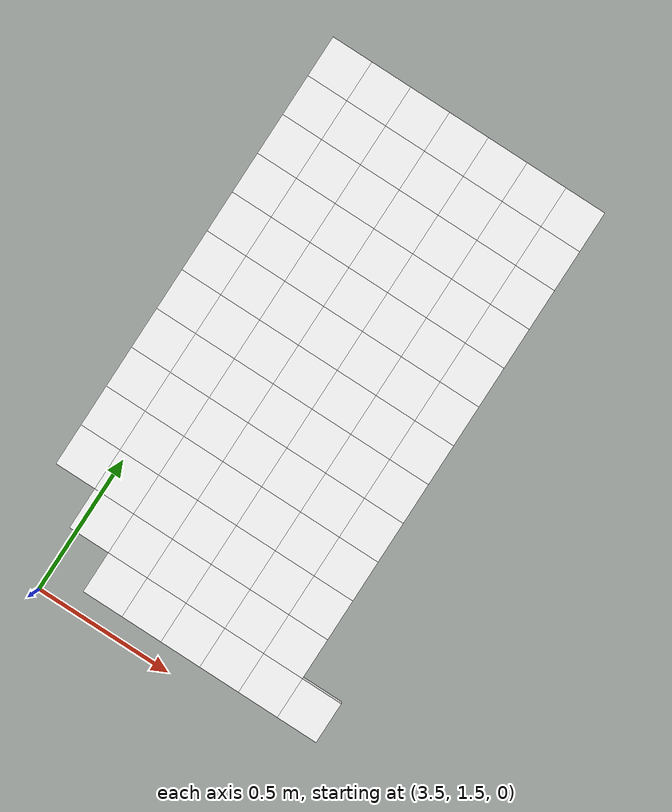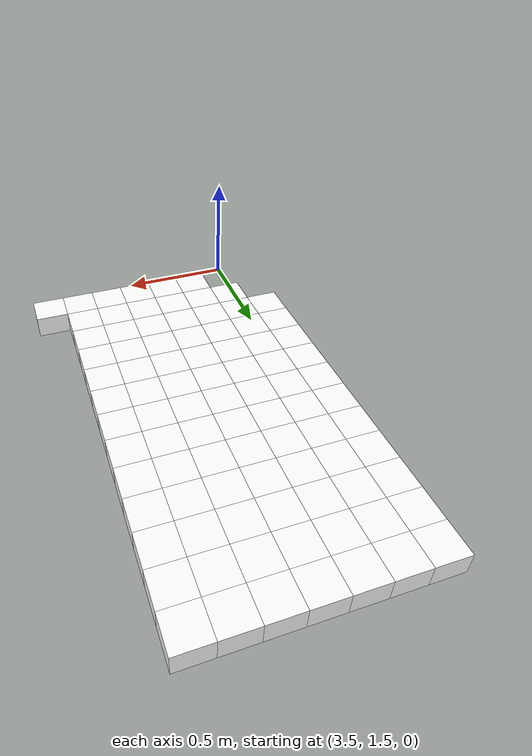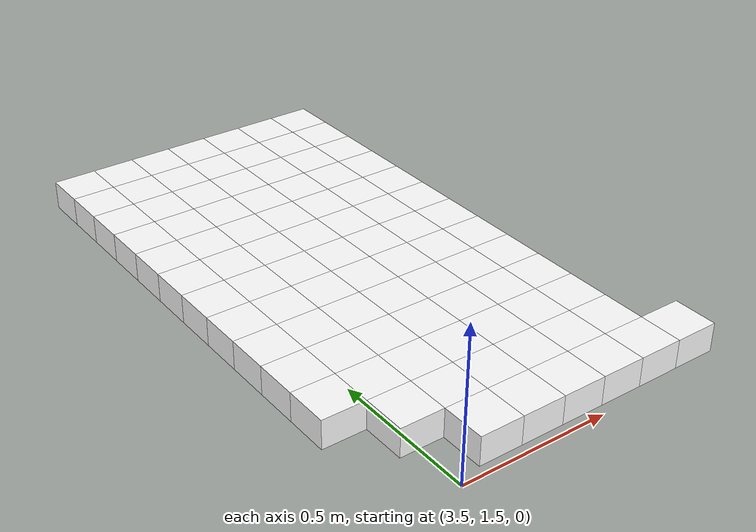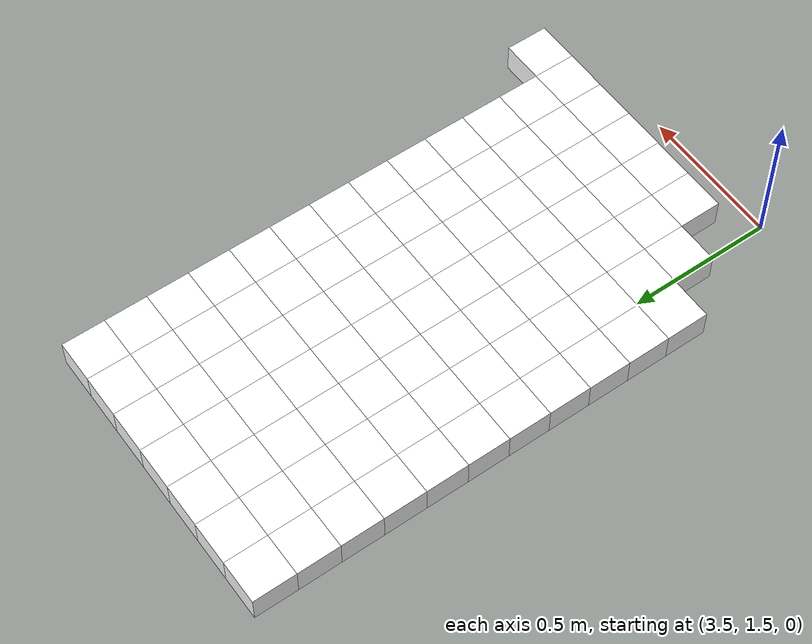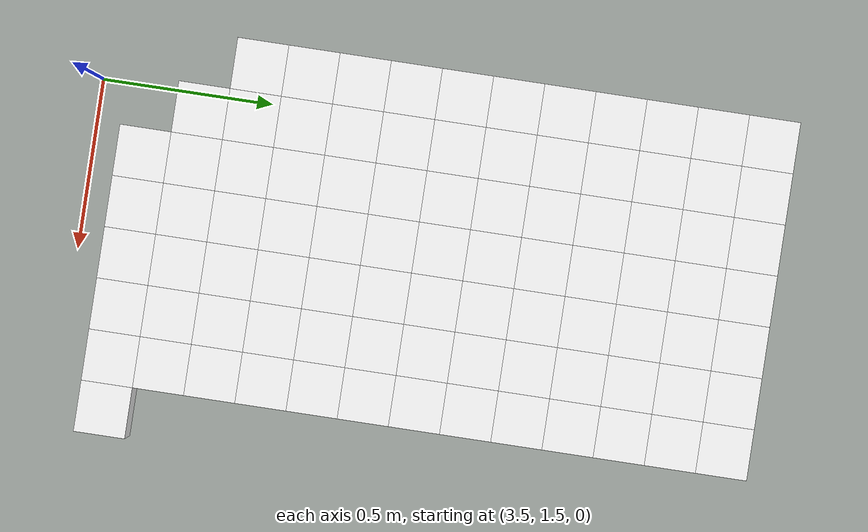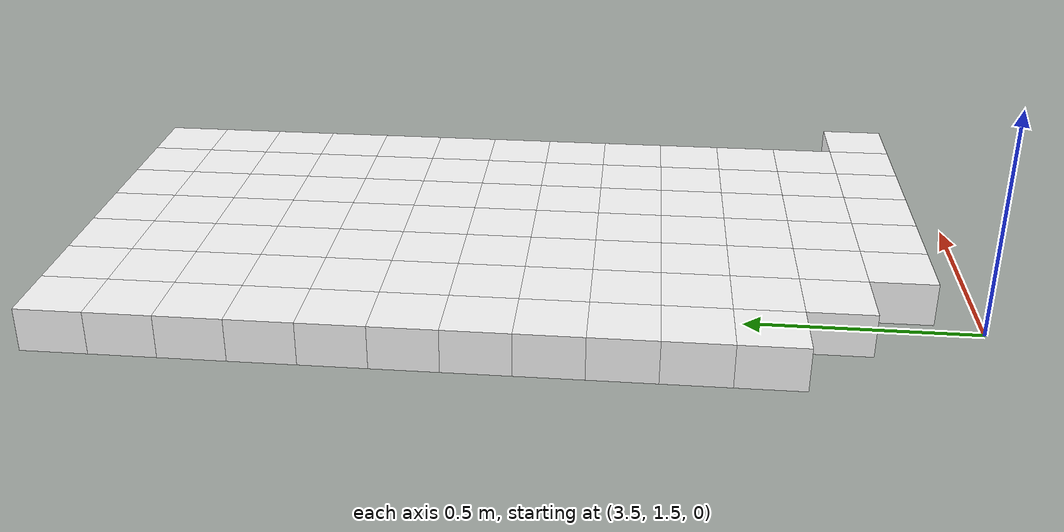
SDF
<sdf version="1.7">
 <world name="default">
  <include><uri>model://sun</uri></include>
  <model name="static_environment">
   <static>true</static>
   <link name="region_568">
    <pose>3.700000000000003 1.65 0.0 0.0 0.0 0.0</pose>
    <collision name="region_568_collision">
     <geometry><box><size>0.15 0.15 0.1</size></box></geometry>
     <surface><friction><ode><mu>1.0</mu><mu2>1.0</mu2></ode></friction></surface>
    </collision>
    <visual name="region_568_visual">
     <geometry><box><size>0.15 0.15 0.1</size></box></geometry>
     <material><ambient>1.0 1.0 1.0 1.0</ambient><diffuse>1.0 1.0 1.0 1.0</diffuse></material>
    </visual>
   </link>
   <link name="region_569">
    <pose>3.850000000000003 1.65 0.0 0.0 0.0 0.0</pose>
    <collision name="region_569_collision">
     <geometry><box><size>0.15 0.15 0.1</size></box></geometry>
     <surface><friction><ode><mu>1.0</mu><mu2>1.0</mu2></ode></friction></surface>
    </collision>
    <visual name="region_569_visual">
     <geometry><box><size>0.15 0.15 0.1</size></box></geometry>
     <material><ambient>1.0 1.0 1.0 1.0</ambient><diffuse>1.0 1.0 1.0 1.0</diffuse></material>
    </visual>
   </link>
   <link name="region_570">
    <pose>4.0000000000000036 1.65 0.0 0.0 0.0 0.0</pose>
    <collision name="region_570_collision">
     <geometry><box><size>0.15 0.15 0.1</size></box></geometry>
     <surface><friction><ode><mu>1.0</mu><mu2>1.0</mu2></ode></friction></surface>
    </collision>
    <visual name="region_570_visual">
     <geometry><box><size>0.15 0.15 0.1</size></box></geometry>
     <material><ambient>1.0 1.0 1.0 1.0</ambient><diffuse>1.0 1.0 1.0 1.0</diffuse></material>
    </visual>
   </link>
   <link name="region_571">
    <pose>4.150000000000004 1.65 0.0 0.0 0.0 0.0</pose>
    <collision name="region_571_collision">
     <geometry><box><size>0.15 0.15 0.1</size></box></geometry>
     <surface><friction><ode><mu>1.0</mu><mu2>1.0</mu2></ode></friction></surface>
    </collision>
    <visual name="region_571_visual">
     <geometry><box><size>0.15 0.15 0.1</size></box></geometry>
     <material><ambient>1.0 1.0 1.0 1.0</ambient><diffuse>1.0 1.0 1.0 1.0</diffuse></material>
    </visual>
   </link>
   <link name="region_572">
    <pose>4.300000000000004 1.65 0.0 0.0 0.0 0.0</pose>
    <collision name="region_572_collision">
     <geometry><box><size>0.15 0.15 0.1</size></box></geometry>
     <surface><friction><ode><mu>1.0</mu><mu2>1.0</mu2></ode></friction></surface>
    </collision>
    <visual name="region_572_visual">
     <geometry><box><size>0.15 0.15 0.1</size></box></geometry>
     <material><ambient>1.0 1.0 1.0 1.0</ambient><diffuse>1.0 1.0 1.0 1.0</diffuse></material>
    </visual>
   </link>
   <link name="region_573">
    <pose>4.450000000000005 1.65 0.0 0.0 0.0 0.0</pose>
    <collision name="region_573_collision">
     <geometry><box><size>0.15 0.15 0.1</size></box></geometry>
     <surface><friction><ode><mu>1.0</mu><mu2>1.0</mu2></ode></friction></surface>
    </collision>
    <visual name="region_573_visual">
     <geometry><box><size>0.15 0.15 0.1</size></box></geometry>
     <material><ambient>1.0 1.0 1.0 1.0</ambient><diffuse>1.0 1.0 1.0 1.0</diffuse></material>
    </visual>
   </link>
   <link name="region_587">
    <pose>3.5500000000000025 1.7999999999999998 0.0 0.0 0.0 0.0</pose>
    <collision name="region_587_collision">
     <geometry><box><size>0.15 0.15 0.1</size></box></geometry>
     <surface><friction><ode><mu>1.0</mu><mu2>1.0</mu2></ode></friction></surface>
    </collision>
    <visual name="region_587_visual">
     <geometry><box><size>0.15 0.15 0.1</size></box></geometry>
     <material><ambient>1.0 1.0 1.0 1.0</ambient><diffuse>1.0 1.0 1.0 1.0</diffuse></material>
    </visual>
   </link>
   <link name="region_588">
    <pose>3.700000000000003 1.7999999999999998 0.0 0.0 0.0 0.0</pose>
    <collision name="region_588_collision">
     <geometry><box><size>0.15 0.15 0.1</size></box></geometry>
     <surface><friction><ode><mu>1.0</mu><mu2>1.0</mu2></ode></friction></surface>
    </collision>
    <visual name="region_588_visual">
     <geometry><box><size>0.15 0.15 0.1</size></box></geometry>
     <material><ambient>1.0 1.0 1.0 1.0</ambient><diffuse>1.0 1.0 1.0 1.0</diffuse></material>
    </visual>
   </link>
   <link name="region_589">
    <pose>3.850000000000003 1.7999999999999998 0.0 0.0 0.0 0.0</pose>
    <collision name="region_589_collision">
     <geometry><box><size>0.15 0.15 0.1</size></box></geometry>
     <surface><friction><ode><mu>1.0</mu><mu2>1.0</mu2></ode></friction></surface>
    </collision>
    <visual name="region_589_visual">
     <geometry><box><size>0.15 0.15 0.1</size></box></geometry>
     <material><ambient>1.0 1.0 1.0 1.0</ambient><diffuse>1.0 1.0 1.0 1.0</diffuse></material>
    </visual>
   </link>
   <link name="region_590">
    <pose>4.0000000000000036 1.7999999999999998 0.0 0.0 0.0 0.0</pose>
    <collision name="region_590_collision">
     <geometry><box><size>0.15 0.15 0.1</size></box></geometry>
     <surface><friction><ode><mu>1.0</mu><mu2>1.0</mu2></ode></friction></surface>
    </collision>
    <visual name="region_590_visual">
     <geometry><box><size>0.15 0.15 0.1</size></box></geometry>
     <material><ambient>1.0 1.0 1.0 1.0</ambient><diffuse>1.0 1.0 1.0 1.0</diffuse></material>
    </visual>
   </link>
   <link name="region_591">
    <pose>4.150000000000004 1.7999999999999998 0.0 0.0 0.0 0.0</pose>
    <collision name="region_591_collision">
     <geometry><box><size>0.15 0.15 0.1</size></box></geometry>
     <surface><friction><ode><mu>1.0</mu><mu2>1.0</mu2></ode></friction></surface>
    </collision>
    <visual name="region_591_visual">
     <geometry><box><size>0.15 0.15 0.1</size></box></geometry>
     <material><ambient>1.0 1.0 1.0 1.0</ambient><diffuse>1.0 1.0 1.0 1.0</diffuse></material>
    </visual>
   </link>
   <link name="region_592">
    <pose>4.300000000000004 1.7999999999999998 0.0 0.0 0.0 0.0</pose>
    <collision name="region_592_collision">
     <geometry><box><size>0.15 0.15 0.1</size></box></geometry>
     <surface><friction><ode><mu>1.0</mu><mu2>1.0</mu2></ode></friction></surface>
    </collision>
    <visual name="region_592_visual">
     <geometry><box><size>0.15 0.15 0.1</size></box></geometry>
     <material><ambient>1.0 1.0 1.0 1.0</ambient><diffuse>1.0 1.0 1.0 1.0</diffuse></material>
    </visual>
   </link>
   <link name="region_606">
    <pose>3.400000000000002 1.9499999999999997 0.0 0.0 0.0 0.0</pose>
    <collision name="region_606_collision">
     <geometry><box><size>0.15 0.15 0.1</size></box></geometry>
     <surface><friction><ode><mu>1.0</mu><mu2>1.0</mu2></ode></friction></surface>
    </collision>
    <visual name="region_606_visual">
     <geometry><box><size>0.15 0.15 0.1</size></box></geometry>
     <material><ambient>1.0 1.0 1.0 1.0</ambient><diffuse>1.0 1.0 1.0 1.0</diffuse></material>
    </visual>
   </link>
   <link name="region_607">
    <pose>3.5500000000000025 1.9499999999999997 0.0 0.0 0.0 0.0</pose>
    <collision name="region_607_collision">
     <geometry><box><size>0.15 0.15 0.1</size></box></geometry>
     <surface><friction><ode><mu>1.0</mu><mu2>1.0</mu2></ode></friction></surface>
    </collision>
    <visual name="region_607_visual">
     <geometry><box><size>0.15 0.15 0.1</size></box></geometry>
     <material><ambient>1.0 1.0 1.0 1.0</ambient><diffuse>1.0 1.0 1.0 1.0</diffuse></material>
    </visual>
   </link>
   <link name="region_608">
    <pose>3.700000000000003 1.9499999999999997 0.0 0.0 0.0 0.0</pose>
    <collision name="region_608_collision">
     <geometry><box><size>0.15 0.15 0.1</size></box></geometry>
     <surface><friction><ode><mu>1.0</mu><mu2>1.0</mu2></ode></friction></surface>
    </collision>
    <visual name="region_608_visual">
     <geometry><box><size>0.15 0.15 0.1</size></box></geometry>
     <material><ambient>1.0 1.0 1.0 1.0</ambient><diffuse>1.0 1.0 1.0 1.0</diffuse></material>
    </visual>
   </link>
   <link name="region_609">
    <pose>3.850000000000003 1.9499999999999997 0.0 0.0 0.0 0.0</pose>
    <collision name="region_609_collision">
     <geometry><box><size>0.15 0.15 0.1</size></box></geometry>
     <surface><friction><ode><mu>1.0</mu><mu2>1.0</mu2></ode></friction></surface>
    </collision>
    <visual name="region_609_visual">
     <geometry><box><size>0.15 0.15 0.1</size></box></geometry>
     <material><ambient>1.0 1.0 1.0 1.0</ambient><diffuse>1.0 1.0 1.0 1.0</diffuse></material>
    </visual>
   </link>
   <link name="region_610">
    <pose>4.0000000000000036 1.9499999999999997 0.0 0.0 0.0 0.0</pose>
    <collision name="region_610_collision">
     <geometry><box><size>0.15 0.15 0.1</size></box></geometry>
     <surface><friction><ode><mu>1.0</mu><mu2>1.0</mu2></ode></friction></surface>
    </collision>
    <visual name="region_610_visual">
     <geometry><box><size>0.15 0.15 0.1</size></box></geometry>
     <material><ambient>1.0 1.0 1.0 1.0</ambient><diffuse>1.0 1.0 1.0 1.0</diffuse></material>
    </visual>
   </link>
   <link name="region_611">
    <pose>4.150000000000004 1.9499999999999997 0.0 0.0 0.0 0.0</pose>
    <collision name="region_611_collision">
     <geometry><box><size>0.15 0.15 0.1</size></box></geometry>
     <surface><friction><ode><mu>1.0</mu><mu2>1.0</mu2></ode></friction></surface>
    </collision>
    <visual name="region_611_visual">
     <geometry><box><size>0.15 0.15 0.1</size></box></geometry>
     <material><ambient>1.0 1.0 1.0 1.0</ambient><diffuse>1.0 1.0 1.0 1.0</diffuse></material>
    </visual>
   </link>
   <link name="region_612">
    <pose>4.300000000000004 1.9499999999999997 0.0 0.0 0.0 0.0</pose>
    <collision name="region_612_collision">
     <geometry><box><size>0.15 0.15 0.1</size></box></geometry>
     <surface><friction><ode><mu>1.0</mu><mu2>1.0</mu2></ode></friction></surface>
    </collision>
    <visual name="region_612_visual">
     <geometry><box><size>0.15 0.15 0.1</size></box></geometry>
     <material><ambient>1.0 1.0 1.0 1.0</ambient><diffuse>1.0 1.0 1.0 1.0</diffuse></material>
    </visual>
   </link>
   <link name="region_626">
    <pose>3.400000000000002 2.0999999999999996 0.0 0.0 0.0 0.0</pose>
    <collision name="region_626_collision">
     <geometry><box><size>0.15 0.15 0.1</size></box></geometry>
     <surface><friction><ode><mu>1.0</mu><mu2>1.0</mu2></ode></friction></surface>
    </collision>
    <visual name="region_626_visual">
     <geometry><box><size>0.15 0.15 0.1</size></box></geometry>
     <material><ambient>1.0 1.0 1.0 1.0</ambient><diffuse>1.0 1.0 1.0 1.0</diffuse></material>
    </visual>
   </link>
   <link name="region_627">
    <pose>3.5500000000000025 2.0999999999999996 0.0 0.0 0.0 0.0</pose>
    <collision name="region_627_collision">
     <geometry><box><size>0.15 0.15 0.1</size></box></geometry>
     <surface><friction><ode><mu>1.0</mu><mu2>1.0</mu2></ode></friction></surface>
    </collision>
    <visual name="region_627_visual">
     <geometry><box><size>0.15 0.15 0.1</size></box></geometry>
     <material><ambient>1.0 1.0 1.0 1.0</ambient><diffuse>1.0 1.0 1.0 1.0</diffuse></material>
    </visual>
   </link>
   <link name="region_628">
    <pose>3.700000000000003 2.0999999999999996 0.0 0.0 0.0 0.0</pose>
    <collision name="region_628_collision">
     <geometry><box><size>0.15 0.15 0.1</size></box></geometry>
     <surface><friction><ode><mu>1.0</mu><mu2>1.0</mu2></ode></friction></surface>
    </collision>
    <visual name="region_628_visual">
     <geometry><box><size>0.15 0.15 0.1</size></box></geometry>
     <material><ambient>1.0 1.0 1.0 1.0</ambient><diffuse>1.0 1.0 1.0 1.0</diffuse></material>
    </visual>
   </link>
   <link name="region_629">
    <pose>3.850000000000003 2.0999999999999996 0.0 0.0 0.0 0.0</pose>
    <collision name="region_629_collision">
     <geometry><box><size>0.15 0.15 0.1</size></box></geometry>
     <surface><friction><ode><mu>1.0</mu><mu2>1.0</mu2></ode></friction></surface>
    </collision>
    <visual name="region_629_visual">
     <geometry><box><size>0.15 0.15 0.1</size></box></geometry>
     <material><ambient>1.0 1.0 1.0 1.0</ambient><diffuse>1.0 1.0 1.0 1.0</diffuse></material>
    </visual>
   </link>
   <link name="region_630">
    <pose>4.0000000000000036 2.0999999999999996 0.0 0.0 0.0 0.0</pose>
    <collision name="region_630_collision">
     <geometry><box><size>0.15 0.15 0.1</size></box></geometry>
     <surface><friction><ode><mu>1.0</mu><mu2>1.0</mu2></ode></friction></surface>
    </collision>
    <visual name="region_630_visual">
     <geometry><box><size>0.15 0.15 0.1</size></box></geometry>
     <material><ambient>1.0 1.0 1.0 1.0</ambient><diffuse>1.0 1.0 1.0 1.0</diffuse></material>
    </visual>
   </link>
   <link name="region_631">
    <pose>4.150000000000004 2.0999999999999996 0.0 0.0 0.0 0.0</pose>
    <collision name="region_631_collision">
     <geometry><box><size>0.15 0.15 0.1</size></box></geometry>
     <surface><friction><ode><mu>1.0</mu><mu2>1.0</mu2></ode></friction></surface>
    </collision>
    <visual name="region_631_visual">
     <geometry><box><size>0.15 0.15 0.1</size></box></geometry>
     <material><ambient>1.0 1.0 1.0 1.0</ambient><diffuse>1.0 1.0 1.0 1.0</diffuse></material>
    </visual>
   </link>
   <link name="region_632">
    <pose>4.300000000000004 2.0999999999999996 0.0 0.0 0.0 0.0</pose>
    <collision name="region_632_collision">
     <geometry><box><size>0.15 0.15 0.1</size></box></geometry>
     <surface><friction><ode><mu>1.0</mu><mu2>1.0</mu2></ode></friction></surface>
    </collision>
    <visual name="region_632_visual">
     <geometry><box><size>0.15 0.15 0.1</size></box></geometry>
     <material><ambient>1.0 1.0 1.0 1.0</ambient><diffuse>1.0 1.0 1.0 1.0</diffuse></material>
    </visual>
   </link>
   <link name="region_646">
    <pose>3.400000000000002 2.2499999999999996 0.0 0.0 0.0 0.0</pose>
    <collision name="region_646_collision">
     <geometry><box><size>0.15 0.15 0.1</size></box></geometry>
     <surface><friction><ode><mu>1.0</mu><mu2>1.0</mu2></ode></friction></surface>
    </collision>
    <visual name="region_646_visual">
     <geometry><box><size>0.15 0.15 0.1</size></box></geometry>
     <material><ambient>1.0 1.0 1.0 1.0</ambient><diffuse>1.0 1.0 1.0 1.0</diffuse></material>
    </visual>
   </link>
   <link name="region_647">
    <pose>3.5500000000000025 2.2499999999999996 0.0 0.0 0.0 0.0</pose>
    <collision name="region_647_collision">
     <geometry><box><size>0.15 0.15 0.1</size></box></geometry>
     <surface><friction><ode><mu>1.0</mu><mu2>1.0</mu2></ode></friction></surface>
    </collision>
    <visual name="region_647_visual">
     <geometry><box><size>0.15 0.15 0.1</size></box></geometry>
     <material><ambient>1.0 1.0 1.0 1.0</ambient><diffuse>1.0 1.0 1.0 1.0</diffuse></material>
    </visual>
   </link>
   <link name="region_648">
    <pose>3.700000000000003 2.2499999999999996 0.0 0.0 0.0 0.0</pose>
    <collision name="region_648_collision">
     <geometry><box><size>0.15 0.15 0.1</size></box></geometry>
     <surface><friction><ode><mu>1.0</mu><mu2>1.0</mu2></ode></friction></surface>
    </collision>
    <visual name="region_648_visual">
     <geometry><box><size>0.15 0.15 0.1</size></box></geometry>
     <material><ambient>1.0 1.0 1.0 1.0</ambient><diffuse>1.0 1.0 1.0 1.0</diffuse></material>
    </visual>
   </link>
   <link name="region_649">
    <pose>3.850000000000003 2.2499999999999996 0.0 0.0 0.0 0.0</pose>
    <collision name="region_649_collision">
     <geometry><box><size>0.15 0.15 0.1</size></box></geometry>
     <surface><friction><ode><mu>1.0</mu><mu2>1.0</mu2></ode></friction></surface>
    </collision>
    <visual name="region_649_visual">
     <geometry><box><size>0.15 0.15 0.1</size></box></geometry>
     <material><ambient>1.0 1.0 1.0 1.0</ambient><diffuse>1.0 1.0 1.0 1.0</diffuse></material>
    </visual>
   </link>
   <link name="region_650">
    <pose>4.0000000000000036 2.2499999999999996 0.0 0.0 0.0 0.0</pose>
    <collision name="region_650_collision">
     <geometry><box><size>0.15 0.15 0.1</size></box></geometry>
     <surface><friction><ode><mu>1.0</mu><mu2>1.0</mu2></ode></friction></surface>
    </collision>
    <visual name="region_650_visual">
     <geometry><box><size>0.15 0.15 0.1</size></box></geometry>
     <material><ambient>1.0 1.0 1.0 1.0</ambient><diffuse>1.0 1.0 1.0 1.0</diffuse></material>
    </visual>
   </link>
   <link name="region_651">
    <pose>4.150000000000004 2.2499999999999996 0.0 0.0 0.0 0.0</pose>
    <collision name="region_651_collision">
     <geometry><box><size>0.15 0.15 0.1</size></box></geometry>
     <surface><friction><ode><mu>1.0</mu><mu2>1.0</mu2></ode></friction></surface>
    </collision>
    <visual name="region_651_visual">
     <geometry><box><size>0.15 0.15 0.1</size></box></geometry>
     <material><ambient>1.0 1.0 1.0 1.0</ambient><diffuse>1.0 1.0 1.0 1.0</diffuse></material>
    </visual>
   </link>
   <link name="region_652">
    <pose>4.300000000000004 2.2499999999999996 0.0 0.0 0.0 0.0</pose>
    <collision name="region_652_collision">
     <geometry><box><size>0.15 0.15 0.1</size></box></geometry>
     <surface><friction><ode><mu>1.0</mu><mu2>1.0</mu2></ode></friction></surface>
    </collision>
    <visual name="region_652_visual">
     <geometry><box><size>0.15 0.15 0.1</size></box></geometry>
     <material><ambient>1.0 1.0 1.0 1.0</ambient><diffuse>1.0 1.0 1.0 1.0</diffuse></material>
    </visual>
   </link>
   <link name="region_666">
    <pose>3.400000000000002 2.3999999999999995 0.0 0.0 0.0 0.0</pose>
    <collision name="region_666_collision">
     <geometry><box><size>0.15 0.15 0.1</size></box></geometry>
     <surface><friction><ode><mu>1.0</mu><mu2>1.0</mu2></ode></friction></surface>
    </collision>
    <visual name="region_666_visual">
     <geometry><box><size>0.15 0.15 0.1</size></box></geometry>
     <material><ambient>1.0 1.0 1.0 1.0</ambient><diffuse>1.0 1.0 1.0 1.0</diffuse></material>
    </visual>
   </link>
   <link name="region_667">
    <pose>3.5500000000000025 2.3999999999999995 0.0 0.0 0.0 0.0</pose>
    <collision name="region_667_collision">
     <geometry><box><size>0.15 0.15 0.1</size></box></geometry>
     <surface><friction><ode><mu>1.0</mu><mu2>1.0</mu2></ode></friction></surface>
    </collision>
    <visual name="region_667_visual">
     <geometry><box><size>0.15 0.15 0.1</size></box></geometry>
     <material><ambient>1.0 1.0 1.0 1.0</ambient><diffuse>1.0 1.0 1.0 1.0</diffuse></material>
    </visual>
   </link>
   <link name="region_668">
    <pose>3.700000000000003 2.3999999999999995 0.0 0.0 0.0 0.0</pose>
    <collision name="region_668_collision">
     <geometry><box><size>0.15 0.15 0.1</size></box></geometry>
     <surface><friction><ode><mu>1.0</mu><mu2>1.0</mu2></ode></friction></surface>
    </collision>
    <visual name="region_668_visual">
     <geometry><box><size>0.15 0.15 0.1</size></box></geometry>
     <material><ambient>1.0 1.0 1.0 1.0</ambient><diffuse>1.0 1.0 1.0 1.0</diffuse></material>
    </visual>
   </link>
   <link name="region_669">
    <pose>3.850000000000003 2.3999999999999995 0.0 0.0 0.0 0.0</pose>
    <collision name="region_669_collision">
     <geometry><box><size>0.15 0.15 0.1</size></box></geometry>
     <surface><friction><ode><mu>1.0</mu><mu2>1.0</mu2></ode></friction></surface>
    </collision>
    <visual name="region_669_visual">
     <geometry><box><size>0.15 0.15 0.1</size></box></geometry>
     <material><ambient>1.0 1.0 1.0 1.0</ambient><diffuse>1.0 1.0 1.0 1.0</diffuse></material>
    </visual>
   </link>
   <link name="region_670">
    <pose>4.0000000000000036 2.3999999999999995 0.0 0.0 0.0 0.0</pose>
    <collision name="region_670_collision">
     <geometry><box><size>0.15 0.15 0.1</size></box></geometry>
     <surface><friction><ode><mu>1.0</mu><mu2>1.0</mu2></ode></friction></surface>
    </collision>
    <visual name="region_670_visual">
     <geometry><box><size>0.15 0.15 0.1</size></box></geometry>
     <material><ambient>1.0 1.0 1.0 1.0</ambient><diffuse>1.0 1.0 1.0 1.0</diffuse></material>
    </visual>
   </link>
   <link name="region_671">
    <pose>4.150000000000004 2.3999999999999995 0.0 0.0 0.0 0.0</pose>
    <collision name="region_671_collision">
     <geometry><box><size>0.15 0.15 0.1</size></box></geometry>
     <surface><friction><ode><mu>1.0</mu><mu2>1.0</mu2></ode></friction></surface>
    </collision>
    <visual name="region_671_visual">
     <geometry><box><size>0.15 0.15 0.1</size></box></geometry>
     <material><ambient>1.0 1.0 1.0 1.0</ambient><diffuse>1.0 1.0 1.0 1.0</diffuse></material>
    </visual>
   </link>
   <link name="region_672">
    <pose>4.300000000000004 2.3999999999999995 0.0 0.0 0.0 0.0</pose>
    <collision name="region_672_collision">
     <geometry><box><size>0.15 0.15 0.1</size></box></geometry>
     <surface><friction><ode><mu>1.0</mu><mu2>1.0</mu2></ode></friction></surface>
    </collision>
    <visual name="region_672_visual">
     <geometry><box><size>0.15 0.15 0.1</size></box></geometry>
     <material><ambient>1.0 1.0 1.0 1.0</ambient><diffuse>1.0 1.0 1.0 1.0</diffuse></material>
    </visual>
   </link>
   <link name="region_686">
    <pose>3.400000000000002 2.5499999999999994 0.0 0.0 0.0 0.0</pose>
    <collision name="region_686_collision">
     <geometry><box><size>0.15 0.15 0.1</size></box></geometry>
     <surface><friction><ode><mu>1.0</mu><mu2>1.0</mu2></ode></friction></surface>
    </collision>
    <visual name="region_686_visual">
     <geometry><box><size>0.15 0.15 0.1</size></box></geometry>
     <material><ambient>1.0 1.0 1.0 1.0</ambient><diffuse>1.0 1.0 1.0 1.0</diffuse></material>
    </visual>
   </link>
   <link name="region_687">
    <pose>3.5500000000000025 2.5499999999999994 0.0 0.0 0.0 0.0</pose>
    <collision name="region_687_collision">
     <geometry><box><size>0.15 0.15 0.1</size></box></geometry>
     <surface><friction><ode><mu>1.0</mu><mu2>1.0</mu2></ode></friction></surface>
    </collision>
    <visual name="region_687_visual">
     <geometry><box><size>0.15 0.15 0.1</size></box></geometry>
     <material><ambient>1.0 1.0 1.0 1.0</ambient><diffuse>1.0 1.0 1.0 1.0</diffuse></material>
    </visual>
   </link>
   <link name="region_688">
    <pose>3.700000000000003 2.5499999999999994 0.0 0.0 0.0 0.0</pose>
    <collision name="region_688_collision">
     <geometry><box><size>0.15 0.15 0.1</size></box></geometry>
     <surface><friction><ode><mu>1.0</mu><mu2>1.0</mu2></ode></friction></surface>
    </collision>
    <visual name="region_688_visual">
     <geometry><box><size>0.15 0.15 0.1</size></box></geometry>
     <material><ambient>1.0 1.0 1.0 1.0</ambient><diffuse>1.0 1.0 1.0 1.0</diffuse></material>
    </visual>
   </link>
   <link name="region_689">
    <pose>3.850000000000003 2.5499999999999994 0.0 0.0 0.0 0.0</pose>
    <collision name="region_689_collision">
     <geometry><box><size>0.15 0.15 0.1</size></box></geometry>
     <surface><friction><ode><mu>1.0</mu><mu2>1.0</mu2></ode></friction></surface>
    </collision>
    <visual name="region_689_visual">
     <geometry><box><size>0.15 0.15 0.1</size></box></geometry>
     <material><ambient>1.0 1.0 1.0 1.0</ambient><diffuse>1.0 1.0 1.0 1.0</diffuse></material>
    </visual>
   </link>
   <link name="region_690">
    <pose>4.0000000000000036 2.5499999999999994 0.0 0.0 0.0 0.0</pose>
    <collision name="region_690_collision">
     <geometry><box><size>0.15 0.15 0.1</size></box></geometry>
     <surface><friction><ode><mu>1.0</mu><mu2>1.0</mu2></ode></friction></surface>
    </collision>
    <visual name="region_690_visual">
     <geometry><box><size>0.15 0.15 0.1</size></box></geometry>
     <material><ambient>1.0 1.0 1.0 1.0</ambient><diffuse>1.0 1.0 1.0 1.0</diffuse></material>
    </visual>
   </link>
   <link name="region_691">
    <pose>4.150000000000004 2.5499999999999994 0.0 0.0 0.0 0.0</pose>
    <collision name="region_691_collision">
     <geometry><box><size>0.15 0.15 0.1</size></box></geometry>
     <surface><friction><ode><mu>1.0</mu><mu2>1.0</mu2></ode></friction></surface>
    </collision>
    <visual name="region_691_visual">
     <geometry><box><size>0.15 0.15 0.1</size></box></geometry>
     <material><ambient>1.0 1.0 1.0 1.0</ambient><diffuse>1.0 1.0 1.0 1.0</diffuse></material>
    </visual>
   </link>
   <link name="region_692">
    <pose>4.300000000000004 2.5499999999999994 0.0 0.0 0.0 0.0</pose>
    <collision name="region_692_collision">
     <geometry><box><size>0.15 0.15 0.1</size></box></geometry>
     <surface><friction><ode><mu>1.0</mu><mu2>1.0</mu2></ode></friction></surface>
    </collision>
    <visual name="region_692_visual">
     <geometry><box><size>0.15 0.15 0.1</size></box></geometry>
     <material><ambient>1.0 1.0 1.0 1.0</ambient><diffuse>1.0 1.0 1.0 1.0</diffuse></material>
    </visual>
   </link>
   <link name="region_706">
    <pose>3.400000000000002 2.6999999999999997 0.0 0.0 0.0 0.0</pose>
    <collision name="region_706_collision">
     <geometry><box><size>0.15 0.15 0.1</size></box></geometry>
     <surface><friction><ode><mu>1.0</mu><mu2>1.0</mu2></ode></friction></surface>
    </collision>
    <visual name="region_706_visual">
     <geometry><box><size>0.15 0.15 0.1</size></box></geometry>
     <material><ambient>1.0 1.0 1.0 1.0</ambient><diffuse>1.0 1.0 1.0 1.0</diffuse></material>
    </visual>
   </link>
   <link name="region_707">
    <pose>3.5500000000000025 2.6999999999999997 0.0 0.0 0.0 0.0</pose>
    <collision name="region_707_collision">
     <geometry><box><size>0.15 0.15 0.1</size></box></geometry>
     <surface><friction><ode><mu>1.0</mu><mu2>1.0</mu2></ode></friction></surface>
    </collision>
    <visual name="region_707_visual">
     <geometry><box><size>0.15 0.15 0.1</size></box></geometry>
     <material><ambient>1.0 1.0 1.0 1.0</ambient><diffuse>1.0 1.0 1.0 1.0</diffuse></material>
    </visual>
   </link>
   <link name="region_708">
    <pose>3.700000000000003 2.6999999999999997 0.0 0.0 0.0 0.0</pose>
    <collision name="region_708_collision">
     <geometry><box><size>0.15 0.15 0.1</size></box></geometry>
     <surface><friction><ode><mu>1.0</mu><mu2>1.0</mu2></ode></friction></surface>
    </collision>
    <visual name="region_708_visual">
     <geometry><box><size>0.15 0.15 0.1</size></box></geometry>
     <material><ambient>1.0 1.0 1.0 1.0</ambient><diffuse>1.0 1.0 1.0 1.0</diffuse></material>
    </visual>
   </link>
   <link name="region_709">
    <pose>3.850000000000003 2.6999999999999997 0.0 0.0 0.0 0.0</pose>
    <collision name="region_709_collision">
     <geometry><box><size>0.15 0.15 0.1</size></box></geometry>
     <surface><friction><ode><mu>1.0</mu><mu2>1.0</mu2></ode></friction></surface>
    </collision>
    <visual name="region_709_visual">
     <geometry><box><size>0.15 0.15 0.1</size></box></geometry>
     <material><ambient>1.0 1.0 1.0 1.0</ambient><diffuse>1.0 1.0 1.0 1.0</diffuse></material>
    </visual>
   </link>
   <link name="region_710">
    <pose>4.0000000000000036 2.6999999999999997 0.0 0.0 0.0 0.0</pose>
    <collision name="region_710_collision">
     <geometry><box><size>0.15 0.15 0.1</size></box></geometry>
     <surface><friction><ode><mu>1.0</mu><mu2>1.0</mu2></ode></friction></surface>
    </collision>
    <visual name="region_710_visual">
     <geometry><box><size>0.15 0.15 0.1</size></box></geometry>
     <material><ambient>1.0 1.0 1.0 1.0</ambient><diffuse>1.0 1.0 1.0 1.0</diffuse></material>
    </visual>
   </link>
   <link name="region_711">
    <pose>4.150000000000004 2.6999999999999997 0.0 0.0 0.0 0.0</pose>
    <collision name="region_711_collision">
     <geometry><box><size>0.15 0.15 0.1</size></box></geometry>
     <surface><friction><ode><mu>1.0</mu><mu2>1.0</mu2></ode></friction></surface>
    </collision>
    <visual name="region_711_visual">
     <geometry><box><size>0.15 0.15 0.1</size></box></geometry>
     <material><ambient>1.0 1.0 1.0 1.0</ambient><diffuse>1.0 1.0 1.0 1.0</diffuse></material>
    </visual>
   </link>
   <link name="region_712">
    <pose>4.300000000000004 2.6999999999999997 0.0 0.0 0.0 0.0</pose>
    <collision name="region_712_collision">
     <geometry><box><size>0.15 0.15 0.1</size></box></geometry>
     <surface><friction><ode><mu>1.0</mu><mu2>1.0</mu2></ode></friction></surface>
    </collision>
    <visual name="region_712_visual">
     <geometry><box><size>0.15 0.15 0.1</size></box></geometry>
     <material><ambient>1.0 1.0 1.0 1.0</ambient><diffuse>1.0 1.0 1.0 1.0</diffuse></material>
    </visual>
   </link>
   <link name="region_726">
    <pose>3.400000000000002 2.8499999999999996 0.0 0.0 0.0 0.0</pose>
    <collision name="region_726_collision">
     <geometry><box><size>0.15 0.15 0.1</size></box></geometry>
     <surface><friction><ode><mu>1.0</mu><mu2>1.0</mu2></ode></friction></surface>
    </collision>
    <visual name="region_726_visual">
     <geometry><box><size>0.15 0.15 0.1</size></box></geometry>
     <material><ambient>1.0 1.0 1.0 1.0</ambient><diffuse>1.0 1.0 1.0 1.0</diffuse></material>
    </visual>
   </link>
   <link name="region_727">
    <pose>3.5500000000000025 2.8499999999999996 0.0 0.0 0.0 0.0</pose>
    <collision name="region_727_collision">
     <geometry><box><size>0.15 0.15 0.1</size></box></geometry>
     <surface><friction><ode><mu>1.0</mu><mu2>1.0</mu2></ode></friction></surface>
    </collision>
    <visual name="region_727_visual">
     <geometry><box><size>0.15 0.15 0.1</size></box></geometry>
     <material><ambient>1.0 1.0 1.0 1.0</ambient><diffuse>1.0 1.0 1.0 1.0</diffuse></material>
    </visual>
   </link>
   <link name="region_728">
    <pose>3.700000000000003 2.8499999999999996 0.0 0.0 0.0 0.0</pose>
    <collision name="region_728_collision">
     <geometry><box><size>0.15 0.15 0.1</size></box></geometry>
     <surface><friction><ode><mu>1.0</mu><mu2>1.0</mu2></ode></friction></surface>
    </collision>
    <visual name="region_728_visual">
     <geometry><box><size>0.15 0.15 0.1</size></box></geometry>
     <material><ambient>1.0 1.0 1.0 1.0</ambient><diffuse>1.0 1.0 1.0 1.0</diffuse></material>
    </visual>
   </link>
   <link name="region_729">
    <pose>3.850000000000003 2.8499999999999996 0.0 0.0 0.0 0.0</pose>
    <collision name="region_729_collision">
     <geometry><box><size>0.15 0.15 0.1</size></box></geometry>
     <surface><friction><ode><mu>1.0</mu><mu2>1.0</mu2></ode></friction></surface>
    </collision>
    <visual name="region_729_visual">
     <geometry><box><size>0.15 0.15 0.1</size></box></geometry>
     <material><ambient>1.0 1.0 1.0 1.0</ambient><diffuse>1.0 1.0 1.0 1.0</diffuse></material>
    </visual>
   </link>
   <link name="region_730">
    <pose>4.0000000000000036 2.8499999999999996 0.0 0.0 0.0 0.0</pose>
    <collision name="region_730_collision">
     <geometry><box><size>0.15 0.15 0.1</size></box></geometry>
     <surface><friction><ode><mu>1.0</mu><mu2>1.0</mu2></ode></friction></surface>
    </collision>
    <visual name="region_730_visual">
     <geometry><box><size>0.15 0.15 0.1</size></box></geometry>
     <material><ambient>1.0 1.0 1.0 1.0</ambient><diffuse>1.0 1.0 1.0 1.0</diffuse></material>
    </visual>
   </link>
   <link name="region_731">
    <pose>4.150000000000004 2.8499999999999996 0.0 0.0 0.0 0.0</pose>
    <collision name="region_731_collision">
     <geometry><box><size>0.15 0.15 0.1</size></box></geometry>
     <surface><friction><ode><mu>1.0</mu><mu2>1.0</mu2></ode></friction></surface>
    </collision>
    <visual name="region_731_visual">
     <geometry><box><size>0.15 0.15 0.1</size></box></geometry>
     <material><ambient>1.0 1.0 1.0 1.0</ambient><diffuse>1.0 1.0 1.0 1.0</diffuse></material>
    </visual>
   </link>
   <link name="region_732">
    <pose>4.300000000000004 2.8499999999999996 0.0 0.0 0.0 0.0</pose>
    <collision name="region_732_collision">
     <geometry><box><size>0.15 0.15 0.1</size></box></geometry>
     <surface><friction><ode><mu>1.0</mu><mu2>1.0</mu2></ode></friction></surface>
    </collision>
    <visual name="region_732_visual">
     <geometry><box><size>0.15 0.15 0.1</size></box></geometry>
     <material><ambient>1.0 1.0 1.0 1.0</ambient><diffuse>1.0 1.0 1.0 1.0</diffuse></material>
    </visual>
   </link>
   <link name="region_746">
    <pose>3.400000000000002 2.9999999999999996 0.0 0.0 0.0 0.0</pose>
    <collision name="region_746_collision">
     <geometry><box><size>0.15 0.15 0.1</size></box></geometry>
     <surface><friction><ode><mu>1.0</mu><mu2>1.0</mu2></ode></friction></surface>
    </collision>
    <visual name="region_746_visual">
     <geometry><box><size>0.15 0.15 0.1</size></box></geometry>
     <material><ambient>1.0 1.0 1.0 1.0</ambient><diffuse>1.0 1.0 1.0 1.0</diffuse></material>
    </visual>
   </link>
   <link name="region_747">
    <pose>3.5500000000000025 2.9999999999999996 0.0 0.0 0.0 0.0</pose>
    <collision name="region_747_collision">
     <geometry><box><size>0.15 0.15 0.1</size></box></geometry>
     <surface><friction><ode><mu>1.0</mu><mu2>1.0</mu2></ode></friction></surface>
    </collision>
    <visual name="region_747_visual">
     <geometry><box><size>0.15 0.15 0.1</size></box></geometry>
     <material><ambient>1.0 1.0 1.0 1.0</ambient><diffuse>1.0 1.0 1.0 1.0</diffuse></material>
    </visual>
   </link>
   <link name="region_748">
    <pose>3.700000000000003 2.9999999999999996 0.0 0.0 0.0 0.0</pose>
    <collision name="region_748_collision">
     <geometry><box><size>0.15 0.15 0.1</size></box></geometry>
     <surface><friction><ode><mu>1.0</mu><mu2>1.0</mu2></ode></friction></surface>
    </collision>
    <visual name="region_748_visual">
     <geometry><box><size>0.15 0.15 0.1</size></box></geometry>
     <material><ambient>1.0 1.0 1.0 1.0</ambient><diffuse>1.0 1.0 1.0 1.0</diffuse></material>
    </visual>
   </link>
   <link name="region_749">
    <pose>3.850000000000003 2.9999999999999996 0.0 0.0 0.0 0.0</pose>
    <collision name="region_749_collision">
     <geometry><box><size>0.15 0.15 0.1</size></box></geometry>
     <surface><friction><ode><mu>1.0</mu><mu2>1.0</mu2></ode></friction></surface>
    </collision>
    <visual name="region_749_visual">
     <geometry><box><size>0.15 0.15 0.1</size></box></geometry>
     <material><ambient>1.0 1.0 1.0 1.0</ambient><diffuse>1.0 1.0 1.0 1.0</diffuse></material>
    </visual>
   </link>
   <link name="region_750">
    <pose>4.0000000000000036 2.9999999999999996 0.0 0.0 0.0 0.0</pose>
    <collision name="region_750_collision">
     <geometry><box><size>0.15 0.15 0.1</size></box></geometry>
     <surface><friction><ode><mu>1.0</mu><mu2>1.0</mu2></ode></friction></surface>
    </collision>
    <visual name="region_750_visual">
     <geometry><box><size>0.15 0.15 0.1</size></box></geometry>
     <material><ambient>1.0 1.0 1.0 1.0</ambient><diffuse>1.0 1.0 1.0 1.0</diffuse></material>
    </visual>
   </link>
   <link name="region_751">
    <pose>4.150000000000004 2.9999999999999996 0.0 0.0 0.0 0.0</pose>
    <collision name="region_751_collision">
     <geometry><box><size>0.15 0.15 0.1</size></box></geometry>
     <surface><friction><ode><mu>1.0</mu><mu2>1.0</mu2></ode></friction></surface>
    </collision>
    <visual name="region_751_visual">
     <geometry><box><size>0.15 0.15 0.1</size></box></geometry>
     <material><ambient>1.0 1.0 1.0 1.0</ambient><diffuse>1.0 1.0 1.0 1.0</diffuse></material>
    </visual>
   </link>
   <link name="region_752">
    <pose>4.300000000000004 2.9999999999999996 0.0 0.0 0.0 0.0</pose>
    <collision name="region_752_collision">
     <geometry><box><size>0.15 0.15 0.1</size></box></geometry>
     <surface><friction><ode><mu>1.0</mu><mu2>1.0</mu2></ode></friction></surface>
    </collision>
    <visual name="region_752_visual">
     <geometry><box><size>0.15 0.15 0.1</size></box></geometry>
     <material><ambient>1.0 1.0 1.0 1.0</ambient><diffuse>1.0 1.0 1.0 1.0</diffuse></material>
    </visual>
   </link>
   <link name="region_766">
    <pose>3.400000000000002 3.1499999999999995 0.0 0.0 0.0 0.0</pose>
    <collision name="region_766_collision">
     <geometry><box><size>0.15 0.15 0.1</size></box></geometry>
     <surface><friction><ode><mu>1.0</mu><mu2>1.0</mu2></ode></friction></surface>
    </collision>
    <visual name="region_766_visual">
     <geometry><box><size>0.15 0.15 0.1</size></box></geometry>
     <material><ambient>1.0 1.0 1.0 1.0</ambient><diffuse>1.0 1.0 1.0 1.0</diffuse></material>
    </visual>
   </link>
   <link name="region_767">
    <pose>3.5500000000000025 3.1499999999999995 0.0 0.0 0.0 0.0</pose>
    <collision name="region_767_collision">
     <geometry><box><size>0.15 0.15 0.1</size></box></geometry>
     <surface><friction><ode><mu>1.0</mu><mu2>1.0</mu2></ode></friction></surface>
    </collision>
    <visual name="region_767_visual">
     <geometry><box><size>0.15 0.15 0.1</size></box></geometry>
     <material><ambient>1.0 1.0 1.0 1.0</ambient><diffuse>1.0 1.0 1.0 1.0</diffuse></material>
    </visual>
   </link>
   <link name="region_768">
    <pose>3.700000000000003 3.1499999999999995 0.0 0.0 0.0 0.0</pose>
    <collision name="region_768_collision">
     <geometry><box><size>0.15 0.15 0.1</size></box></geometry>
     <surface><friction><ode><mu>1.0</mu><mu2>1.0</mu2></ode></friction></surface>
    </collision>
    <visual name="region_768_visual">
     <geometry><box><size>0.15 0.15 0.1</size></box></geometry>
     <material><ambient>1.0 1.0 1.0 1.0</ambient><diffuse>1.0 1.0 1.0 1.0</diffuse></material>
    </visual>
   </link>
   <link name="region_769">
    <pose>3.850000000000003 3.1499999999999995 0.0 0.0 0.0 0.0</pose>
    <collision name="region_769_collision">
     <geometry><box><size>0.15 0.15 0.1</size></box></geometry>
     <surface><friction><ode><mu>1.0</mu><mu2>1.0</mu2></ode></friction></surface>
    </collision>
    <visual name="region_769_visual">
     <geometry><box><size>0.15 0.15 0.1</size></box></geometry>
     <material><ambient>1.0 1.0 1.0 1.0</ambient><diffuse>1.0 1.0 1.0 1.0</diffuse></material>
    </visual>
   </link>
   <link name="region_770">
    <pose>4.0000000000000036 3.1499999999999995 0.0 0.0 0.0 0.0</pose>
    <collision name="region_770_collision">
     <geometry><box><size>0.15 0.15 0.1</size></box></geometry>
     <surface><friction><ode><mu>1.0</mu><mu2>1.0</mu2></ode></friction></surface>
    </collision>
    <visual name="region_770_visual">
     <geometry><box><size>0.15 0.15 0.1</size></box></geometry>
     <material><ambient>1.0 1.0 1.0 1.0</ambient><diffuse>1.0 1.0 1.0 1.0</diffuse></material>
    </visual>
   </link>
   <link name="region_771">
    <pose>4.150000000000004 3.1499999999999995 0.0 0.0 0.0 0.0</pose>
    <collision name="region_771_collision">
     <geometry><box><size>0.15 0.15 0.1</size></box></geometry>
     <surface><friction><ode><mu>1.0</mu><mu2>1.0</mu2></ode></friction></surface>
    </collision>
    <visual name="region_771_visual">
     <geometry><box><size>0.15 0.15 0.1</size></box></geometry>
     <material><ambient>1.0 1.0 1.0 1.0</ambient><diffuse>1.0 1.0 1.0 1.0</diffuse></material>
    </visual>
   </link>
   <link name="region_772">
    <pose>4.300000000000004 3.1499999999999995 0.0 0.0 0.0 0.0</pose>
    <collision name="region_772_collision">
     <geometry><box><size>0.15 0.15 0.1</size></box></geometry>
     <surface><friction><ode><mu>1.0</mu><mu2>1.0</mu2></ode></friction></surface>
    </collision>
    <visual name="region_772_visual">
     <geometry><box><size>0.15 0.15 0.1</size></box></geometry>
     <material><ambient>1.0 1.0 1.0 1.0</ambient><diffuse>1.0 1.0 1.0 1.0</diffuse></material>
    </visual>
   </link>
   <link name="region_786">
    <pose>3.400000000000002 3.2999999999999994 0.0 0.0 0.0 0.0</pose>
    <collision name="region_786_collision">
     <geometry><box><size>0.15 0.15 0.1</size></box></geometry>
     <surface><friction><ode><mu>1.0</mu><mu2>1.0</mu2></ode></friction></surface>
    </collision>
    <visual name="region_786_visual">
     <geometry><box><size>0.15 0.15 0.1</size></box></geometry>
     <material><ambient>1.0 1.0 1.0 1.0</ambient><diffuse>1.0 1.0 1.0 1.0</diffuse></material>
    </visual>
   </link>
   <link name="region_787">
    <pose>3.5500000000000025 3.2999999999999994 0.0 0.0 0.0 0.0</pose>
    <collision name="region_787_collision">
     <geometry><box><size>0.15 0.15 0.1</size></box></geometry>
     <surface><friction><ode><mu>1.0</mu><mu2>1.0</mu2></ode></friction></surface>
    </collision>
    <visual name="region_787_visual">
     <geometry><box><size>0.15 0.15 0.1</size></box></geometry>
     <material><ambient>1.0 1.0 1.0 1.0</ambient><diffuse>1.0 1.0 1.0 1.0</diffuse></material>
    </visual>
   </link>
   <link name="region_788">
    <pose>3.700000000000003 3.2999999999999994 0.0 0.0 0.0 0.0</pose>
    <collision name="region_788_collision">
     <geometry><box><size>0.15 0.15 0.1</size></box></geometry>
     <surface><friction><ode><mu>1.0</mu><mu2>1.0</mu2></ode></friction></surface>
    </collision>
    <visual name="region_788_visual">
     <geometry><box><size>0.15 0.15 0.1</size></box></geometry>
     <material><ambient>1.0 1.0 1.0 1.0</ambient><diffuse>1.0 1.0 1.0 1.0</diffuse></material>
    </visual>
   </link>
   <link name="region_789">
    <pose>3.850000000000003 3.2999999999999994 0.0 0.0 0.0 0.0</pose>
    <collision name="region_789_collision">
     <geometry><box><size>0.15 0.15 0.1</size></box></geometry>
     <surface><friction><ode><mu>1.0</mu><mu2>1.0</mu2></ode></friction></surface>
    </collision>
    <visual name="region_789_visual">
     <geometry><box><size>0.15 0.15 0.1</size></box></geometry>
     <material><ambient>1.0 1.0 1.0 1.0</ambient><diffuse>1.0 1.0 1.0 1.0</diffuse></material>
    </visual>
   </link>
   <link name="region_790">
    <pose>4.0000000000000036 3.2999999999999994 0.0 0.0 0.0 0.0</pose>
    <collision name="region_790_collision">
     <geometry><box><size>0.15 0.15 0.1</size></box></geometry>
     <surface><friction><ode><mu>1.0</mu><mu2>1.0</mu2></ode></friction></surface>
    </collision>
    <visual name="region_790_visual">
     <geometry><box><size>0.15 0.15 0.1</size></box></geometry>
     <material><ambient>1.0 1.0 1.0 1.0</ambient><diffuse>1.0 1.0 1.0 1.0</diffuse></material>
    </visual>
   </link>
   <link name="region_791">
    <pose>4.150000000000004 3.2999999999999994 0.0 0.0 0.0 0.0</pose>
    <collision name="region_791_collision">
     <geometry><box><size>0.15 0.15 0.1</size></box></geometry>
     <surface><friction><ode><mu>1.0</mu><mu2>1.0</mu2></ode></friction></surface>
    </collision>
    <visual name="region_791_visual">
     <geometry><box><size>0.15 0.15 0.1</size></box></geometry>
     <material><ambient>1.0 1.0 1.0 1.0</ambient><diffuse>1.0 1.0 1.0 1.0</diffuse></material>
    </visual>
   </link>
   <link name="region_792">
    <pose>4.300000000000004 3.2999999999999994 0.0 0.0 0.0 0.0</pose>
    <collision name="region_792_collision">
     <geometry><box><size>0.15 0.15 0.1</size></box></geometry>
     <surface><friction><ode><mu>1.0</mu><mu2>1.0</mu2></ode></friction></surface>
    </collision>
    <visual name="region_792_visual">
     <geometry><box><size>0.15 0.15 0.1</size></box></geometry>
     <material><ambient>1.0 1.0 1.0 1.0</ambient><diffuse>1.0 1.0 1.0 1.0</diffuse></material>
    </visual>
   </link>
   <link name="region_806">
    <pose>3.400000000000002 3.4499999999999993 0.0 0.0 0.0 0.0</pose>
    <collision name="region_806_collision">
     <geometry><box><size>0.15 0.15 0.1</size></box></geometry>
     <surface><friction><ode><mu>1.0</mu><mu2>1.0</mu2></ode></friction></surface>
    </collision>
    <visual name="region_806_visual">
     <geometry><box><size>0.15 0.15 0.1</size></box></geometry>
     <material><ambient>1.0 1.0 1.0 1.0</ambient><diffuse>1.0 1.0 1.0 1.0</diffuse></material>
    </visual>
   </link>
   <link name="region_807">
    <pose>3.5500000000000025 3.4499999999999993 0.0 0.0 0.0 0.0</pose>
    <collision name="region_807_collision">
     <geometry><box><size>0.15 0.15 0.1</size></box></geometry>
     <surface><friction><ode><mu>1.0</mu><mu2>1.0</mu2></ode></friction></surface>
    </collision>
    <visual name="region_807_visual">
     <geometry><box><size>0.15 0.15 0.1</size></box></geometry>
     <material><ambient>1.0 1.0 1.0 1.0</ambient><diffuse>1.0 1.0 1.0 1.0</diffuse></material>
    </visual>
   </link>
   <link name="region_808">
    <pose>3.700000000000003 3.4499999999999993 0.0 0.0 0.0 0.0</pose>
    <collision name="region_808_collision">
     <geometry><box><size>0.15 0.15 0.1</size></box></geometry>
     <surface><friction><ode><mu>1.0</mu><mu2>1.0</mu2></ode></friction></surface>
    </collision>
    <visual name="region_808_visual">
     <geometry><box><size>0.15 0.15 0.1</size></box></geometry>
     <material><ambient>1.0 1.0 1.0 1.0</ambient><diffuse>1.0 1.0 1.0 1.0</diffuse></material>
    </visual>
   </link>
   <link name="region_809">
    <pose>3.850000000000003 3.4499999999999993 0.0 0.0 0.0 0.0</pose>
    <collision name="region_809_collision">
     <geometry><box><size>0.15 0.15 0.1</size></box></geometry>
     <surface><friction><ode><mu>1.0</mu><mu2>1.0</mu2></ode></friction></surface>
    </collision>
    <visual name="region_809_visual">
     <geometry><box><size>0.15 0.15 0.1</size></box></geometry>
     <material><ambient>1.0 1.0 1.0 1.0</ambient><diffuse>1.0 1.0 1.0 1.0</diffuse></material>
    </visual>
   </link>
   <link name="region_810">
    <pose>4.0000000000000036 3.4499999999999993 0.0 0.0 0.0 0.0</pose>
    <collision name="region_810_collision">
     <geometry><box><size>0.15 0.15 0.1</size></box></geometry>
     <surface><friction><ode><mu>1.0</mu><mu2>1.0</mu2></ode></friction></surface>
    </collision>
    <visual name="region_810_visual">
     <geometry><box><size>0.15 0.15 0.1</size></box></geometry>
     <material><ambient>1.0 1.0 1.0 1.0</ambient><diffuse>1.0 1.0 1.0 1.0</diffuse></material>
    </visual>
   </link>
   <link name="region_811">
    <pose>4.150000000000004 3.4499999999999993 0.0 0.0 0.0 0.0</pose>
    <collision name="region_811_collision">
     <geometry><box><size>0.15 0.15 0.1</size></box></geometry>
     <surface><friction><ode><mu>1.0</mu><mu2>1.0</mu2></ode></friction></surface>
    </collision>
    <visual name="region_811_visual">
     <geometry><box><size>0.15 0.15 0.1</size></box></geometry>
     <material><ambient>1.0 1.0 1.0 1.0</ambient><diffuse>1.0 1.0 1.0 1.0</diffuse></material>
    </visual>
   </link>
   <link name="region_812">
    <pose>4.300000000000004 3.4499999999999993 0.0 0.0 0.0 0.0</pose>
    <collision name="region_812_collision">
     <geometry><box><size>0.15 0.15 0.1</size></box></geometry>
     <surface><friction><ode><mu>1.0</mu><mu2>1.0</mu2></ode></friction></surface>
    </collision>
    <visual name="region_812_visual">
     <geometry><box><size>0.15 0.15 0.1</size></box></geometry>
     <material><ambient>1.0 1.0 1.0 1.0</ambient><diffuse>1.0 1.0 1.0 1.0</diffuse></material>
    </visual>
   </link>
  </model>
 </world>
</sdf>
